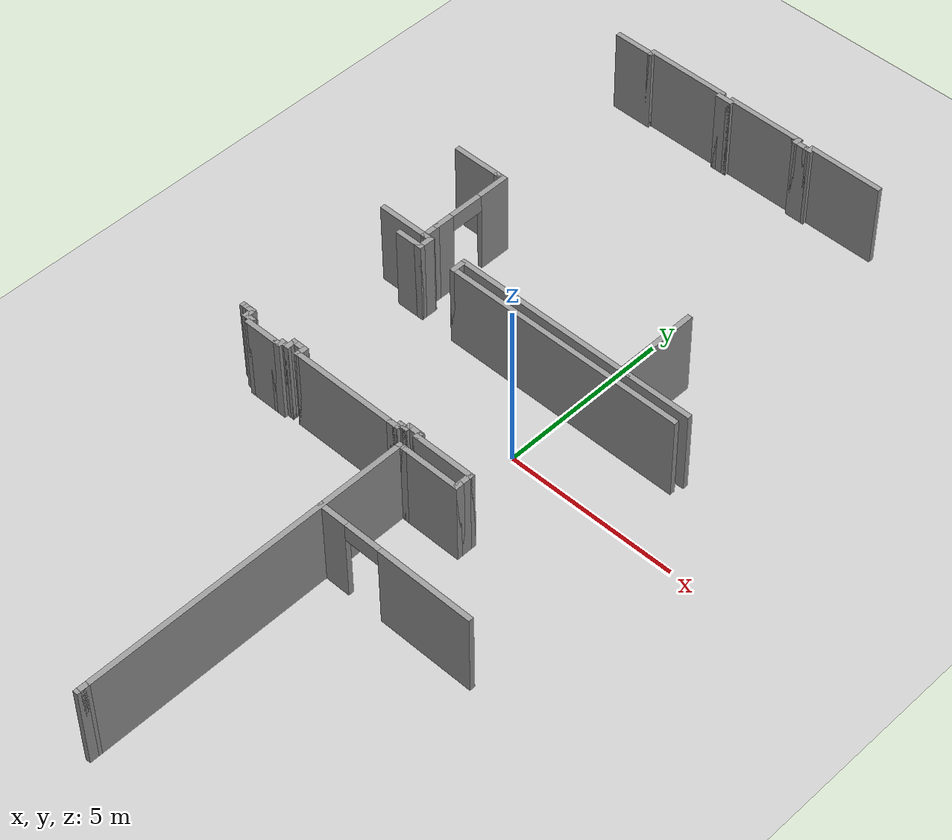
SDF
<sdf version="1.6">
 <world name="default">
  <model name="ground_plane">
   <static>1</static>
   <link name="link">
    <collision name="collision">
     <geometry><plane><normal>0 0 1</normal><size>100 100</size></plane></geometry>
     <surface><friction><ode><mu>100</mu><mu2>50</mu2></ode></friction></surface>
    </collision>
    <visual name="visual">
     <cast_shadows>0</cast_shadows>
     <geometry><plane><normal>0 0 1</normal><size>100 100</size></plane></geometry>
     <material>
      <script><uri>file://media/materials/scripts/gazebo.material</uri><name>Gazebo/Grey</name></script>
     </material>
    </visual>
   </link>
  </model>
  <model name="office_full">
   <pose>-0.417572 -0.704362 0 0 -0 0</pose>
   <link name="Wall_218">
    <collision name="Wall_218_Collision">
     <geometry><box><size>0.25 0.15 2.5</size></box></geometry>
     <pose>0 0 1.25 0 -0 0</pose>
    </collision>
    <visual name="Wall_218_Visual">
     <pose>0 0 1.25 0 -0 0</pose>
     <geometry><box><size>0.25 0.15 2.5</size></box></geometry>
     <material>
      <script><uri>file://media/materials/scripts/gazebo.material</uri><name>Gazebo/Grey</name></script>
      <ambient>1 1 1 1</ambient>
     </material>
    </visual>
    <pose>-6.0403 -1.78121 0 0 -0 0</pose>
   </link>
   <link name="Wall_219">
    <collision name="Wall_219_Collision">
     <geometry><box><size>0.25 0.15 2.5</size></box></geometry>
     <pose>0 0 1.25 0 -0 0</pose>
    </collision>
    <visual name="Wall_219_Visual">
     <pose>0 0 1.25 0 -0 0</pose>
     <geometry><box><size>0.25 0.15 2.5</size></box></geometry>
     <material>
      <script><uri>file://media/materials/scripts/gazebo.material</uri><name>Gazebo/Grey</name></script>
      <ambient>1 1 1 1</ambient>
     </material>
    </visual>
    <pose>-5.9403 -1.78121 0 0 -0 0</pose>
   </link>
   <link name="Wall_220">
    <collision name="Wall_220_Collision">
     <geometry><box><size>0.25 0.15 2.5</size></box></geometry>
     <pose>0 0 1.25 0 -0 0</pose>
    </collision>
    <visual name="Wall_220_Visual">
     <pose>0 0 1.25 0 -0 0</pose>
     <geometry><box><size>0.25 0.15 2.5</size></box></geometry>
     <material>
      <script><uri>file://media/materials/scripts/gazebo.material</uri><name>Gazebo/Grey</name></script>
      <ambient>1 1 1 1</ambient>
     </material>
    </visual>
    <pose>-5.8403 -1.78121 0 0 -0 0</pose>
   </link>
   <link name="Wall_224">
    <collision name="Wall_224_Collision">
     <geometry><box><size>0.25 0.15 2.5</size></box></geometry>
     <pose>0 0 1.25 0 -0 0</pose>
    </collision>
    <visual name="Wall_224_Visual">
     <pose>0 0 1.25 0 -0 0</pose>
     <geometry><box><size>0.25 0.15 2.5</size></box></geometry>
     <material>
      <script><uri>file://media/materials/scripts/gazebo.material</uri><name>Gazebo/Grey</name></script>
      <ambient>1 1 1 1</ambient>
     </material>
    </visual>
    <pose>-5.8403 -1.78121 0 0 -0 0</pose>
   </link>
   <link name="Wall_225">
    <collision name="Wall_225_Collision">
     <geometry><box><size>0.25 0.15 2.5</size></box></geometry>
     <pose>0 0 1.25 0 -0 0</pose>
    </collision>
    <visual name="Wall_225_Visual">
     <pose>0 0 1.25 0 -0 0</pose>
     <geometry><box><size>0.25 0.15 2.5</size></box></geometry>
     <material>
      <script><uri>file://media/materials/scripts/gazebo.material</uri><name>Gazebo/Grey</name></script>
      <ambient>1 1 1 1</ambient>
     </material>
    </visual>
    <pose>-5.7903 -1.83121 0 0 0 -1.5708</pose>
   </link>
   <link name="Wall_226">
    <collision name="Wall_226_Collision">
     <geometry><box><size>0.25 0.15 2.5</size></box></geometry>
     <pose>0 0 1.25 0 -0 0</pose>
    </collision>
    <visual name="Wall_226_Visual">
     <pose>0 0 1.25 0 -0 0</pose>
     <geometry><box><size>0.25 0.15 2.5</size></box></geometry>
     <material>
      <script><uri>file://media/materials/scripts/gazebo.material</uri><name>Gazebo/Grey</name></script>
      <ambient>1 1 1 1</ambient>
     </material>
    </visual>
    <pose>-5.7903 -1.93121 0 0 0 -1.5708</pose>
   </link>
   <link name="Wall_227">
    <collision name="Wall_227_Collision">
     <geometry><box><size>0.25 0.15 2.5</size></box></geometry>
     <pose>0 0 1.25 0 -0 0</pose>
    </collision>
    <visual name="Wall_227_Visual">
     <pose>0 0 1.25 0 -0 0</pose>
     <geometry><box><size>0.25 0.15 2.5</size></box></geometry>
     <material>
      <script><uri>file://media/materials/scripts/gazebo.material</uri><name>Gazebo/Grey</name></script>
      <ambient>1 1 1 1</ambient>
     </material>
    </visual>
    <pose>-5.7403 -1.98121 0 0 -0 0</pose>
   </link>
   <link name="Wall_228">
    <collision name="Wall_228_Collision">
     <geometry><box><size>0.25 0.15 2.5</size></box></geometry>
     <pose>0 0 1.25 0 -0 0</pose>
    </collision>
    <visual name="Wall_228_Visual">
     <pose>0 0 1.25 0 -0 0</pose>
     <geometry><box><size>0.25 0.15 2.5</size></box></geometry>
     <material>
      <script><uri>file://media/materials/scripts/gazebo.material</uri><name>Gazebo/Grey</name></script>
      <ambient>1 1 1 1</ambient>
     </material>
    </visual>
    <pose>-5.6403 -1.98121 0 0 -0 0</pose>
   </link>
   <link name="Wall_229">
    <collision name="Wall_229_Collision">
     <geometry><box><size>0.25 0.15 2.5</size></box></geometry>
     <pose>0 0 1.25 0 -0 0</pose>
    </collision>
    <visual name="Wall_229_Visual">
     <pose>0 0 1.25 0 -0 0</pose>
     <geometry><box><size>0.25 0.15 2.5</size></box></geometry>
     <material>
      <script><uri>file://media/materials/scripts/gazebo.material</uri><name>Gazebo/Grey</name></script>
      <ambient>1 1 1 1</ambient>
     </material>
    </visual>
    <pose>-5.5903 -2.03121 0 0 0 -1.5708</pose>
   </link>
   <link name="Wall_230">
    <collision name="Wall_230_Collision">
     <geometry><box><size>1 0.15 2.5</size></box></geometry>
     <pose>0 0 1.25 0 -0 0</pose>
    </collision>
    <visual name="Wall_230_Visual">
     <pose>0 0 1.25 0 -0 0</pose>
     <geometry><box><size>1 0.15 2.5</size></box></geometry>
     <material>
      <script><uri>file://media/materials/scripts/gazebo.material</uri><name>Gazebo/Grey</name></script>
      <ambient>1 1 1 1</ambient>
     </material>
    </visual>
    <pose>-5.1653 -2.08121 0 0 -0 0</pose>
   </link>
   <link name="Wall_231">
    <collision name="Wall_231_Collision">
     <geometry><box><size>0.25 0.15 2.5</size></box></geometry>
     <pose>0 0 1.25 0 -0 0</pose>
    </collision>
    <visual name="Wall_231_Visual">
     <pose>0 0 1.25 0 -0 0</pose>
     <geometry><box><size>0.25 0.15 2.5</size></box></geometry>
     <material>
      <script><uri>file://media/materials/scripts/gazebo.material</uri><name>Gazebo/Grey</name></script>
      <ambient>1 1 1 1</ambient>
     </material>
    </visual>
    <pose>-4.6903 -2.08121 0 0 -0 0</pose>
   </link>
   <link name="Wall_232">
    <collision name="Wall_232_Collision">
     <geometry><box><size>0.25 0.15 2.5</size></box></geometry>
     <pose>0 0 1.25 0 -0 0</pose>
    </collision>
    <visual name="Wall_232_Visual">
     <pose>0 0 1.25 0 -0 0</pose>
     <geometry><box><size>0.25 0.15 2.5</size></box></geometry>
     <material>
      <script><uri>file://media/materials/scripts/gazebo.material</uri><name>Gazebo/Grey</name></script>
      <ambient>1 1 1 1</ambient>
     </material>
    </visual>
    <pose>-4.5903 -2.08121 0 0 -0 0</pose>
   </link>
   <link name="Wall_233">
    <collision name="Wall_233_Collision">
     <geometry><box><size>0.25 0.15 2.5</size></box></geometry>
     <pose>0 0 1.25 0 -0 0</pose>
    </collision>
    <visual name="Wall_233_Visual">
     <pose>0 0 1.25 0 -0 0</pose>
     <geometry><box><size>0.25 0.15 2.5</size></box></geometry>
     <material>
      <script><uri>file://media/materials/scripts/gazebo.material</uri><name>Gazebo/Grey</name></script>
      <ambient>1 1 1 1</ambient>
     </material>
    </visual>
    <pose>-4.5403 -2.03121 0 0 -0 1.5708</pose>
   </link>
   <link name="Wall_234">
    <collision name="Wall_234_Collision">
     <geometry><box><size>0.25 0.15 2.5</size></box></geometry>
     <pose>0 0 1.25 0 -0 0</pose>
    </collision>
    <visual name="Wall_234_Visual">
     <pose>0 0 1.25 0 -0 0</pose>
     <geometry><box><size>0.25 0.15 2.5</size></box></geometry>
     <material>
      <script><uri>file://media/materials/scripts/gazebo.material</uri><name>Gazebo/Grey</name></script>
      <ambient>1 1 1 1</ambient>
     </material>
    </visual>
    <pose>-4.4903 -1.98121 0 0 -0 0</pose>
   </link>
   <link name="Wall_235">
    <collision name="Wall_235_Collision">
     <geometry><box><size>0.25 0.15 2.5</size></box></geometry>
     <pose>0 0 1.25 0 -0 0</pose>
    </collision>
    <visual name="Wall_235_Visual">
     <pose>0 0 1.25 0 -0 0</pose>
     <geometry><box><size>0.25 0.15 2.5</size></box></geometry>
     <material>
      <script><uri>file://media/materials/scripts/gazebo.material</uri><name>Gazebo/Grey</name></script>
      <ambient>1 1 1 1</ambient>
     </material>
    </visual>
    <pose>-4.3903 -1.98121 0 0 -0 0</pose>
   </link>
   <link name="Wall_236">
    <collision name="Wall_236_Collision">
     <geometry><box><size>0.25 0.15 2.5</size></box></geometry>
     <pose>0 0 1.25 0 -0 0</pose>
    </collision>
    <visual name="Wall_236_Visual">
     <pose>0 0 1.25 0 -0 0</pose>
     <geometry><box><size>0.25 0.15 2.5</size></box></geometry>
     <material>
      <script><uri>file://media/materials/scripts/gazebo.material</uri><name>Gazebo/Grey</name></script>
      <ambient>1 1 1 1</ambient>
     </material>
    </visual>
    <pose>-4.3403 -1.93121 0 0 -0 1.5708</pose>
   </link>
   <link name="Wall_237">
    <collision name="Wall_237_Collision">
     <geometry><box><size>0.25 0.15 2.5</size></box></geometry>
     <pose>0 0 1.25 0 -0 0</pose>
    </collision>
    <visual name="Wall_237_Visual">
     <pose>0 0 1.25 0 -0 0</pose>
     <geometry><box><size>0.25 0.15 2.5</size></box></geometry>
     <material>
      <script><uri>file://media/materials/scripts/gazebo.material</uri><name>Gazebo/Grey</name></script>
      <ambient>1 1 1 1</ambient>
     </material>
    </visual>
    <pose>-4.3403 -1.83121 0 0 -0 1.5708</pose>
   </link>
   <link name="Wall_238">
    <collision name="Wall_238_Collision">
     <geometry><box><size>0.5 0.15 2.5</size></box></geometry>
     <pose>0 0 1.25 0 -0 0</pose>
    </collision>
    <visual name="Wall_238_Visual">
     <pose>0 0 1.25 0 -0 0</pose>
     <geometry><box><size>0.5 0.15 2.5</size></box></geometry>
     <material>
      <script><uri>file://media/materials/scripts/gazebo.material</uri><name>Gazebo/Grey</name></script>
      <ambient>1 1 1 1</ambient>
     </material>
    </visual>
    <pose>-4.1653 -1.78121 0 0 -0 0</pose>
   </link>
   <link name="Wall_239">
    <collision name="Wall_239_Collision">
     <geometry><box><size>0.25 0.15 2.5</size></box></geometry>
     <pose>0 0 1.25 0 -0 0</pose>
    </collision>
    <visual name="Wall_239_Visual">
     <pose>0 0 1.25 0 -0 0</pose>
     <geometry><box><size>0.25 0.15 2.5</size></box></geometry>
     <material>
      <script><uri>file://media/materials/scripts/gazebo.material</uri><name>Gazebo/Grey</name></script>
      <ambient>1 1 1 1</ambient>
     </material>
    </visual>
    <pose>-3.9903 -1.83121 0 0 0 -1.5708</pose>
   </link>
   <link name="Wall_240">
    <collision name="Wall_240_Collision">
     <geometry><box><size>0.25 0.15 2.5</size></box></geometry>
     <pose>0 0 1.25 0 -0 0</pose>
    </collision>
    <visual name="Wall_240_Visual">
     <pose>0 0 1.25 0 -0 0</pose>
     <geometry><box><size>0.25 0.15 2.5</size></box></geometry>
     <material>
      <script><uri>file://media/materials/scripts/gazebo.material</uri><name>Gazebo/Grey</name></script>
      <ambient>1 1 1 1</ambient>
     </material>
    </visual>
    <pose>-3.9903 -1.93121 0 0 0 -1.5708</pose>
   </link>
   <link name="Wall_241">
    <collision name="Wall_241_Collision">
     <geometry><box><size>3.25 0.15 2.5</size></box></geometry>
     <pose>0 0 1.25 0 -0 0</pose>
    </collision>
    <visual name="Wall_241_Visual">
     <pose>0 0 1.25 0 -0 0</pose>
     <geometry><box><size>3.25 0.15 2.5</size></box></geometry>
     <material>
      <script><uri>file://media/materials/scripts/gazebo.material</uri><name>Gazebo/Grey</name></script>
      <ambient>1 1 1 1</ambient>
     </material>
    </visual>
    <pose>-2.4403 -1.98121 0 0 -0 0</pose>
   </link>
   <link name="Wall_242">
    <collision name="Wall_242_Collision">
     <geometry><box><size>0.25 0.15 2.5</size></box></geometry>
     <pose>0 0 1.25 0 -0 0</pose>
    </collision>
    <visual name="Wall_242_Visual">
     <pose>0 0 1.25 0 -0 0</pose>
     <geometry><box><size>0.25 0.15 2.5</size></box></geometry>
     <material>
      <script><uri>file://media/materials/scripts/gazebo.material</uri><name>Gazebo/Grey</name></script>
      <ambient>1 1 1 1</ambient>
     </material>
    </visual>
    <pose>-0.8403 -1.98121 0 0 -0 0</pose>
   </link>
   <link name="Wall_243">
    <collision name="Wall_243_Collision">
     <geometry><box><size>0.25 0.15 2.5</size></box></geometry>
     <pose>0 0 1.25 0 -0 0</pose>
    </collision>
    <visual name="Wall_243_Visual">
     <pose>0 0 1.25 0 -0 0</pose>
     <geometry><box><size>0.25 0.15 2.5</size></box></geometry>
     <material>
      <script><uri>file://media/materials/scripts/gazebo.material</uri><name>Gazebo/Grey</name></script>
      <ambient>1 1 1 1</ambient>
     </material>
    </visual>
    <pose>-0.740299 -1.98121 0 0 -0 0</pose>
   </link>
   <link name="Wall_244">
    <collision name="Wall_244_Collision">
     <geometry><box><size>0.25 0.15 2.5</size></box></geometry>
     <pose>0 0 1.25 0 -0 0</pose>
    </collision>
    <visual name="Wall_244_Visual">
     <pose>0 0 1.25 0 -0 0</pose>
     <geometry><box><size>0.25 0.15 2.5</size></box></geometry>
     <material>
      <script><uri>file://media/materials/scripts/gazebo.material</uri><name>Gazebo/Grey</name></script>
      <ambient>1 1 1 1</ambient>
     </material>
    </visual>
    <pose>-0.6903 -1.93121 0 0 -0 1.5708</pose>
   </link>
   <link name="Wall_245">
    <collision name="Wall_245_Collision">
     <geometry><box><size>0.25 0.15 2.5</size></box></geometry>
     <pose>0 0 1.25 0 -0 0</pose>
    </collision>
    <visual name="Wall_245_Visual">
     <pose>0 0 1.25 0 -0 0</pose>
     <geometry><box><size>0.25 0.15 2.5</size></box></geometry>
     <material>
      <script><uri>file://media/materials/scripts/gazebo.material</uri><name>Gazebo/Grey</name></script>
      <ambient>1 1 1 1</ambient>
     </material>
    </visual>
    <pose>-0.640299 -1.88121 0 0 -0 0</pose>
   </link>
   <link name="Wall_246">
    <collision name="Wall_246_Collision">
     <geometry><box><size>0.25 0.15 2.5</size></box></geometry>
     <pose>0 0 1.25 0 -0 0</pose>
    </collision>
    <visual name="Wall_246_Visual">
     <pose>0 0 1.25 0 -0 0</pose>
     <geometry><box><size>0.25 0.15 2.5</size></box></geometry>
     <material>
      <script><uri>file://media/materials/scripts/gazebo.material</uri><name>Gazebo/Grey</name></script>
      <ambient>1 1 1 1</ambient>
     </material>
    </visual>
    <pose>-0.540299 -1.88121 0 0 -0 0</pose>
   </link>
   <link name="Wall_247">
    <collision name="Wall_247_Collision">
     <geometry><box><size>0.25 0.15 2.5</size></box></geometry>
     <pose>0 0 1.25 0 -0 0</pose>
    </collision>
    <visual name="Wall_247_Visual">
     <pose>0 0 1.25 0 -0 0</pose>
     <geometry><box><size>0.25 0.15 2.5</size></box></geometry>
     <material>
      <script><uri>file://media/materials/scripts/gazebo.material</uri><name>Gazebo/Grey</name></script>
      <ambient>1 1 1 1</ambient>
     </material>
    </visual>
    <pose>-0.490299 -1.83121 0 0 -0 1.5708</pose>
   </link>
   <link name="Wall_248">
    <collision name="Wall_248_Collision">
     <geometry><box><size>0.5 0.15 2.5</size></box></geometry>
     <pose>0 0 1.25 0 -0 0</pose>
    </collision>
    <visual name="Wall_248_Visual">
     <pose>0 0 1.25 0 -0 0</pose>
     <geometry><box><size>0.5 0.15 2.5</size></box></geometry>
     <material>
      <script><uri>file://media/materials/scripts/gazebo.material</uri><name>Gazebo/Grey</name></script>
      <ambient>1 1 1 1</ambient>
     </material>
    </visual>
    <pose>-0.3153 -1.78121 0 0 -0 0</pose>
   </link>
   <link name="Wall_249">
    <collision name="Wall_249_Collision">
     <geometry><box><size>0.25 0.15 2.5</size></box></geometry>
     <pose>0 0 1.25 0 -0 0</pose>
    </collision>
    <visual name="Wall_249_Visual">
     <pose>0 0 1.25 0 -0 0</pose>
     <geometry><box><size>0.25 0.15 2.5</size></box></geometry>
     <material>
      <script><uri>file://media/materials/scripts/gazebo.material</uri><name>Gazebo/Grey</name></script>
      <ambient>1 1 1 1</ambient>
     </material>
    </visual>
    <pose>-0.140299 -1.83121 0 0 0 -1.5708</pose>
   </link>
   <link name="Wall_250">
    <collision name="Wall_250_Collision">
     <geometry><box><size>1.75 0.15 2.5</size></box></geometry>
     <pose>0 0 1.25 0 -0 0</pose>
    </collision>
    <visual name="Wall_250_Visual">
     <pose>0 0 1.25 0 -0 0</pose>
     <geometry><box><size>1.75 0.15 2.5</size></box></geometry>
     <material>
      <script><uri>file://media/materials/scripts/gazebo.material</uri><name>Gazebo/Grey</name></script>
      <ambient>1 1 1 1</ambient>
     </material>
    </visual>
    <pose>0.659701 -1.88121 0 0 -0 0</pose>
   </link>
   <link name="Wall_251">
    <collision name="Wall_251_Collision">
     <geometry><box><size>0.25 0.15 2.5</size></box></geometry>
     <pose>0 0 1.25 0 -0 0</pose>
    </collision>
    <visual name="Wall_251_Visual">
     <pose>0 0 1.25 0 -0 0</pose>
     <geometry><box><size>0.25 0.15 2.5</size></box></geometry>
     <material>
      <script><uri>file://media/materials/scripts/gazebo.material</uri><name>Gazebo/Grey</name></script>
      <ambient>1 1 1 1</ambient>
     </material>
    </visual>
    <pose>1.5097 -1.88121 0 0 -0 0</pose>
   </link>
   <link name="Wall_252">
    <collision name="Wall_252_Collision">
     <geometry><box><size>0.5 0.15 2.5</size></box></geometry>
     <pose>0 0 1.25 0 -0 0</pose>
    </collision>
    <visual name="Wall_252_Visual">
     <pose>0 0 1.25 0 -0 0</pose>
     <geometry><box><size>0.5 0.15 2.5</size></box></geometry>
     <material>
      <script><uri>file://media/materials/scripts/gazebo.material</uri><name>Gazebo/Grey</name></script>
      <ambient>1 1 1 1</ambient>
     </material>
    </visual>
    <pose>1.5597 -2.05621 0 0 0 -1.5708</pose>
   </link>
   <link name="Wall_253">
    <collision name="Wall_253_Collision">
     <geometry><box><size>0.25 0.15 2.5</size></box></geometry>
     <pose>0 0 1.25 0 -0 0</pose>
    </collision>
    <visual name="Wall_253_Visual">
     <pose>0 0 1.25 0 -0 0</pose>
     <geometry><box><size>0.25 0.15 2.5</size></box></geometry>
     <material>
      <script><uri>file://media/materials/scripts/gazebo.material</uri><name>Gazebo/Grey</name></script>
      <ambient>1 1 1 1</ambient>
     </material>
    </visual>
    <pose>1.5597 -2.28121 0 0 0 -1.5708</pose>
   </link>
   <link name="Wall_254">
    <collision name="Wall_254_Collision">
     <geometry><box><size>1.75 0.15 2.5</size></box></geometry>
     <pose>0 0 1.25 0 -0 0</pose>
    </collision>
    <visual name="Wall_254_Visual">
     <pose>0 0 1.25 0 -0 0</pose>
     <geometry><box><size>1.75 0.15 2.5</size></box></geometry>
     <material>
      <script><uri>file://media/materials/scripts/gazebo.material</uri><name>Gazebo/Grey</name></script>
      <ambient>1 1 1 1</ambient>
     </material>
    </visual>
    <pose>0.7597 -2.33121 0 0 -0 3.14159</pose>
   </link>
   <link name="Wall_255">
    <collision name="Wall_255_Collision">
     <geometry><box><size>0.25 0.15 2.5</size></box></geometry>
     <pose>0 0 1.25 0 -0 0</pose>
    </collision>
    <visual name="Wall_255_Visual">
     <pose>0 0 1.25 0 -0 0</pose>
     <geometry><box><size>0.25 0.15 2.5</size></box></geometry>
     <material>
      <script><uri>file://media/materials/scripts/gazebo.material</uri><name>Gazebo/Grey</name></script>
      <ambient>1 1 1 1</ambient>
     </material>
    </visual>
    <pose>-0.0903 -2.33121 0 0 -0 3.14159</pose>
   </link>
   <link name="Wall_256">
    <collision name="Wall_256_Collision">
     <geometry><box><size>0.25 0.15 2.5</size></box></geometry>
     <pose>0 0 1.25 0 -0 0</pose>
    </collision>
    <visual name="Wall_256_Visual">
     <pose>0 0 1.25 0 -0 0</pose>
     <geometry><box><size>0.25 0.15 2.5</size></box></geometry>
     <material>
      <script><uri>file://media/materials/scripts/gazebo.material</uri><name>Gazebo/Grey</name></script>
      <ambient>1 1 1 1</ambient>
     </material>
    </visual>
    <pose>-0.1903 -2.33121 0 0 -0 3.14159</pose>
   </link>
   <link name="Wall_257">
    <collision name="Wall_257_Collision">
     <geometry><box><size>9.5 0.15 2.5</size></box></geometry>
     <pose>0 0 1.25 0 -0 0</pose>
    </collision>
    <visual name="Wall_257_Visual">
     <pose>0 0 1.25 0 -0 0</pose>
     <geometry><box><size>9.5 0.15 2.5</size></box></geometry>
     <material>
      <script><uri>file://media/materials/scripts/gazebo.material</uri><name>Gazebo/Grey</name></script>
      <ambient>1 1 1 1</ambient>
     </material>
    </visual>
    <pose>-0.240299 -7.00621 0 0 0 -1.5708</pose>
   </link>
   <link name="Wall_258">
    <collision name="Wall_258_Collision">
     <geometry><box><size>0.25 0.15 2.5</size></box></geometry>
     <pose>0 0 1.25 0 -0 0</pose>
    </collision>
    <visual name="Wall_258_Visual">
     <pose>0 0 1.25 0 -0 0</pose>
     <geometry><box><size>0.25 0.15 2.5</size></box></geometry>
     <material>
      <script><uri>file://media/materials/scripts/gazebo.material</uri><name>Gazebo/Grey</name></script>
      <ambient>1 1 1 1</ambient>
     </material>
    </visual>
    <pose>-0.240299 -11.7312 0 0 0 -1.5708</pose>
   </link>
   <link name="Wall_259">
    <collision name="Wall_259_Collision">
     <geometry><box><size>0.25 0.15 2.5</size></box></geometry>
     <pose>0 0 1.25 0 -0 0</pose>
    </collision>
    <visual name="Wall_259_Visual">
     <pose>0 0 1.25 0 -0 0</pose>
     <geometry><box><size>0.25 0.15 2.5</size></box></geometry>
     <material>
      <script><uri>file://media/materials/scripts/gazebo.material</uri><name>Gazebo/Grey</name></script>
      <ambient>1 1 1 1</ambient>
     </material>
    </visual>
    <pose>-0.240299 -11.8312 0 0 0 -1.5708</pose>
   </link>
   <link name="Wall_278">
    <pose>2.0603 -4.79261 0 0 -0 0</pose>
    <visual name="Wall_278_Visual_0">
     <pose>-1.93341 0 1.25 0 -0 0</pose>
     <geometry><box><size>0.883173 0.15 2.5</size></box></geometry>
     <material>
      <script><uri>file://media/materials/scripts/gazebo.material</uri><name>Gazebo/Grey</name></script>
      <ambient>1 1 1 1</ambient>
     </material>
    </visual>
    <collision name="Wall_278_Collision_0">
     <geometry><box><size>0.883173 0.15 2.5</size></box></geometry>
     <pose>-1.93341 0 1.25 0 -0 0</pose>
    </collision>
    <visual name="Wall_278_Visual_1">
     <pose>0.966586 0 1.25 0 -0 0</pose>
     <geometry><box><size>2.81683 0.15 2.5</size></box></geometry>
     <material>
      <script><uri>file://media/materials/scripts/gazebo.material</uri><name>Gazebo/Grey</name></script>
      <ambient>1 1 1 1</ambient>
     </material>
    </visual>
    <collision name="Wall_278_Collision_1">
     <geometry><box><size>2.81683 0.15 2.5</size></box></geometry>
     <pose>0.966586 0 1.25 0 -0 0</pose>
    </collision>
    <visual name="Wall_278_Visual_2">
     <pose>-0.966827 0 2.25 0 -0 0</pose>
     <geometry><box><size>1.05 0.15 0.5</size></box></geometry>
     <material>
      <script><uri>file://media/materials/scripts/gazebo.material</uri><name>Gazebo/Grey</name></script>
      <ambient>1 1 1 1</ambient>
     </material>
    </visual>
    <collision name="Wall_278_Collision_2">
     <geometry><box><size>1.05 0.15 0.5</size></box></geometry>
     <pose>-0.966827 0 2.25 0 -0 0</pose>
    </collision>
   </link>
   <link name="Wall_316">
    <collision name="Wall_316_Collision">
     <geometry><box><size>1.25 0.15 2.5</size></box></geometry>
     <pose>0 0 1.25 0 -0 0</pose>
    </collision>
    <visual name="Wall_316_Visual">
     <pose>0 0 1.25 0 -0 0</pose>
     <geometry><box><size>1.25 0.15 2.5</size></box></geometry>
     <material>
      <script><uri>file://media/materials/scripts/gazebo.material</uri><name>Gazebo/Grey</name></script>
      <ambient>1 1 1 1</ambient>
     </material>
    </visual>
    <pose>-5.69202 11.7397 0 0 -0 0</pose>
   </link>
   <link name="Wall_317">
    <collision name="Wall_317_Collision">
     <geometry><box><size>0.25 0.15 2.5</size></box></geometry>
     <pose>0 0 1.25 0 -0 0</pose>
    </collision>
    <visual name="Wall_317_Visual">
     <pose>0 0 1.25 0 -0 0</pose>
     <geometry><box><size>0.25 0.15 2.5</size></box></geometry>
     <material>
      <script><uri>file://media/materials/scripts/gazebo.material</uri><name>Gazebo/Grey</name></script>
      <ambient>1 1 1 1</ambient>
     </material>
    </visual>
    <pose>-5.14202 11.7897 0 0 -0 1.5708</pose>
   </link>
   <link name="Wall_318">
    <collision name="Wall_318_Collision">
     <geometry><box><size>2.5 0.15 2.5</size></box></geometry>
     <pose>0 0 1.25 0 -0 0</pose>
    </collision>
    <visual name="Wall_318_Visual">
     <pose>0 0 1.25 0 -0 0</pose>
     <geometry><box><size>2.5 0.15 2.5</size></box></geometry>
     <material>
      <script><uri>file://media/materials/scripts/gazebo.material</uri><name>Gazebo/Grey</name></script>
      <ambient>1 1 1 1</ambient>
     </material>
    </visual>
    <pose>-3.96702 11.8397 0 0 -0 0</pose>
   </link>
   <link name="Wall_319">
    <collision name="Wall_319_Collision">
     <geometry><box><size>0.25 0.15 2.5</size></box></geometry>
     <pose>0 0 1.25 0 -0 0</pose>
    </collision>
    <visual name="Wall_319_Visual">
     <pose>0 0 1.25 0 -0 0</pose>
     <geometry><box><size>0.25 0.15 2.5</size></box></geometry>
     <material>
      <script><uri>file://media/materials/scripts/gazebo.material</uri><name>Gazebo/Grey</name></script>
      <ambient>1 1 1 1</ambient>
     </material>
    </visual>
    <pose>-2.79202 11.7897 0 0 0 -1.5708</pose>
   </link>
   <link name="Wall_320">
    <collision name="Wall_320_Collision">
     <geometry><box><size>0.5 0.15 2.5</size></box></geometry>
     <pose>0 0 1.25 0 -0 0</pose>
    </collision>
    <visual name="Wall_320_Visual">
     <pose>0 0 1.25 0 -0 0</pose>
     <geometry><box><size>0.5 0.15 2.5</size></box></geometry>
     <material>
      <script><uri>file://media/materials/scripts/gazebo.material</uri><name>Gazebo/Grey</name></script>
      <ambient>1 1 1 1</ambient>
     </material>
    </visual>
    <pose>-2.61702 11.7397 0 0 -0 0</pose>
   </link>
   <link name="Wall_321">
    <collision name="Wall_321_Collision">
     <geometry><box><size>0.25 0.15 2.5</size></box></geometry>
     <pose>0 0 1.25 0 -0 0</pose>
    </collision>
    <visual name="Wall_321_Visual">
     <pose>0 0 1.25 0 -0 0</pose>
     <geometry><box><size>0.25 0.15 2.5</size></box></geometry>
     <material>
      <script><uri>file://media/materials/scripts/gazebo.material</uri><name>Gazebo/Grey</name></script>
      <ambient>1 1 1 1</ambient>
     </material>
    </visual>
    <pose>-2.44202 11.7897 0 0 -0 1.5708</pose>
   </link>
   <link name="Wall_322">
    <collision name="Wall_322_Collision">
     <geometry><box><size>2.25 0.15 2.5</size></box></geometry>
     <pose>0 0 1.25 0 -0 0</pose>
    </collision>
    <visual name="Wall_322_Visual">
     <pose>0 0 1.25 0 -0 0</pose>
     <geometry><box><size>2.25 0.15 2.5</size></box></geometry>
     <material>
      <script><uri>file://media/materials/scripts/gazebo.material</uri><name>Gazebo/Grey</name></script>
      <ambient>1 1 1 1</ambient>
     </material>
    </visual>
    <pose>-1.39202 11.8397 0 0 -0 0</pose>
   </link>
   <link name="Wall_323">
    <collision name="Wall_323_Collision">
     <geometry><box><size>0.25 0.15 2.5</size></box></geometry>
     <pose>0 0 1.25 0 -0 0</pose>
    </collision>
    <visual name="Wall_323_Visual">
     <pose>0 0 1.25 0 -0 0</pose>
     <geometry><box><size>0.25 0.15 2.5</size></box></geometry>
     <material>
      <script><uri>file://media/materials/scripts/gazebo.material</uri><name>Gazebo/Grey</name></script>
      <ambient>1 1 1 1</ambient>
     </material>
    </visual>
    <pose>-0.29202 11.8397 0 0 -0 0</pose>
   </link>
   <link name="Wall_324">
    <collision name="Wall_324_Collision">
     <geometry><box><size>0.25 0.15 2.5</size></box></geometry>
     <pose>0 0 1.25 0 -0 0</pose>
    </collision>
    <visual name="Wall_324_Visual">
     <pose>0 0 1.25 0 -0 0</pose>
     <geometry><box><size>0.25 0.15 2.5</size></box></geometry>
     <material>
      <script><uri>file://media/materials/scripts/gazebo.material</uri><name>Gazebo/Grey</name></script>
      <ambient>1 1 1 1</ambient>
     </material>
    </visual>
    <pose>-0.24202 11.7897 0 0 0 -1.5708</pose>
   </link>
   <link name="Wall_325">
    <collision name="Wall_325_Collision">
     <geometry><box><size>0.5 0.15 2.5</size></box></geometry>
     <pose>0 0 1.25 0 -0 0</pose>
    </collision>
    <visual name="Wall_325_Visual">
     <pose>0 0 1.25 0 -0 0</pose>
     <geometry><box><size>0.5 0.15 2.5</size></box></geometry>
     <material>
      <script><uri>file://media/materials/scripts/gazebo.material</uri><name>Gazebo/Grey</name></script>
      <ambient>1 1 1 1</ambient>
     </material>
    </visual>
    <pose>-0.06702 11.7397 0 0 -0 0</pose>
   </link>
   <link name="Wall_326">
    <collision name="Wall_326_Collision">
     <geometry><box><size>0.25 0.15 2.5</size></box></geometry>
     <pose>0 0 1.25 0 -0 0</pose>
    </collision>
    <visual name="Wall_326_Visual">
     <pose>0 0 1.25 0 -0 0</pose>
     <geometry><box><size>0.25 0.15 2.5</size></box></geometry>
     <material>
      <script><uri>file://media/materials/scripts/gazebo.material</uri><name>Gazebo/Grey</name></script>
      <ambient>1 1 1 1</ambient>
     </material>
    </visual>
    <pose>0.157979 11.7397 0 0 -0 0</pose>
   </link>
   <link name="Wall_327">
    <collision name="Wall_327_Collision">
     <geometry><box><size>0.25 0.15 2.5</size></box></geometry>
     <pose>0 0 1.25 0 -0 0</pose>
    </collision>
    <visual name="Wall_327_Visual">
     <pose>0 0 1.25 0 -0 0</pose>
     <geometry><box><size>0.25 0.15 2.5</size></box></geometry>
     <material>
      <script><uri>file://media/materials/scripts/gazebo.material</uri><name>Gazebo/Grey</name></script>
      <ambient>1 1 1 1</ambient>
     </material>
    </visual>
    <pose>0.20798 11.7897 0 0 -0 1.5708</pose>
   </link>
   <link name="Wall_328">
    <collision name="Wall_328_Collision">
     <geometry><box><size>2.25 0.15 2.5</size></box></geometry>
     <pose>0 0 1.25 0 -0 0</pose>
    </collision>
    <visual name="Wall_328_Visual">
     <pose>0 0 1.25 0 -0 0</pose>
     <geometry><box><size>2.25 0.15 2.5</size></box></geometry>
     <material>
      <script><uri>file://media/materials/scripts/gazebo.material</uri><name>Gazebo/Grey</name></script>
      <ambient>1 1 1 1</ambient>
     </material>
    </visual>
    <pose>1.25798 11.8397 0 0 -0 0</pose>
   </link>
   <link name="Wall_359">
    <collision name="Wall_359_Collision">
     <geometry><box><size>0.75 0.15 2.5</size></box></geometry>
     <pose>0 0 1.25 0 -0 0</pose>
    </collision>
    <visual name="Wall_359_Visual">
     <pose>0 0 1.25 0 -0 0</pose>
     <geometry><box><size>0.75 0.15 2.5</size></box></geometry>
     <material>
      <script><uri>file://media/materials/scripts/gazebo.material</uri><name>Gazebo/Grey</name></script>
      <ambient>1 1 1 1</ambient>
     </material>
    </visual>
    <pose>-4.85432 2.53121 0 0 -0 0</pose>
   </link>
   <link name="Wall_360">
    <collision name="Wall_360_Collision">
     <geometry><box><size>0.25 0.15 2.5</size></box></geometry>
     <pose>0 0 1.25 0 -0 0</pose>
    </collision>
    <visual name="Wall_360_Visual">
     <pose>0 0 1.25 0 -0 0</pose>
     <geometry><box><size>0.25 0.15 2.5</size></box></geometry>
     <material>
      <script><uri>file://media/materials/scripts/gazebo.material</uri><name>Gazebo/Grey</name></script>
      <ambient>1 1 1 1</ambient>
     </material>
    </visual>
    <pose>-4.50432 2.53121 0 0 -0 0</pose>
   </link>
   <link name="Wall_362">
    <collision name="Wall_362_Collision">
     <geometry><box><size>0.25 0.15 2.5</size></box></geometry>
     <pose>0 0 1.25 0 -0 0</pose>
    </collision>
    <visual name="Wall_362_Visual">
     <pose>0 0 1.25 0 -0 0</pose>
     <geometry><box><size>0.25 0.15 2.5</size></box></geometry>
     <material>
      <script><uri>file://media/materials/scripts/gazebo.material</uri><name>Gazebo/Grey</name></script>
      <ambient>1 1 1 1</ambient>
     </material>
    </visual>
    <pose>-4.50432 2.53121 0 0 -0 0</pose>
   </link>
   <link name="Wall_363">
    <collision name="Wall_363_Collision">
     <geometry><box><size>0.5 0.15 2.5</size></box></geometry>
     <pose>0 0 1.25 0 -0 0</pose>
    </collision>
    <visual name="Wall_363_Visual">
     <pose>0 0 1.25 0 -0 0</pose>
     <geometry><box><size>0.5 0.15 2.5</size></box></geometry>
     <material>
      <script><uri>file://media/materials/scripts/gazebo.material</uri><name>Gazebo/Grey</name></script>
      <ambient>1 1 1 1</ambient>
     </material>
    </visual>
    <pose>-4.45432 2.70621 0 0 -0 1.5708</pose>
   </link>
   <link name="Wall_364">
    <collision name="Wall_364_Collision">
     <geometry><box><size>1.75 0.15 2.5</size></box></geometry>
     <pose>0 0 1.25 0 -0 0</pose>
    </collision>
    <visual name="Wall_364_Visual">
     <pose>0 0 1.25 0 -0 0</pose>
     <geometry><box><size>1.75 0.15 2.5</size></box></geometry>
     <material>
      <script><uri>file://media/materials/scripts/gazebo.material</uri><name>Gazebo/Grey</name></script>
      <ambient>1 1 1 1</ambient>
     </material>
    </visual>
    <pose>-5.25432 2.88121 0 0 -0 3.14159</pose>
   </link>
   <link name="Wall_369">
    <collision name="Wall_369_Collision">
     <geometry><box><size>1.5 0.15 2.5</size></box></geometry>
     <pose>0 0 1.25 0 -0 0</pose>
    </collision>
    <visual name="Wall_369_Visual">
     <pose>0 0 1.25 0 -0 0</pose>
     <geometry><box><size>1.5 0.15 2.5</size></box></geometry>
     <material>
      <script><uri>file://media/materials/scripts/gazebo.material</uri><name>Gazebo/Grey</name></script>
      <ambient>1 1 1 1</ambient>
     </material>
    </visual>
    <pose>-5.53646 5.66764 0 0 -0 0</pose>
   </link>
   <link name="Wall_370">
    <collision name="Wall_370_Collision">
     <geometry><box><size>0.25 0.15 2.5</size></box></geometry>
     <pose>0 0 1.25 0 -0 0</pose>
    </collision>
    <visual name="Wall_370_Visual">
     <pose>0 0 1.25 0 -0 0</pose>
     <geometry><box><size>0.25 0.15 2.5</size></box></geometry>
     <material>
      <script><uri>file://media/materials/scripts/gazebo.material</uri><name>Gazebo/Grey</name></script>
      <ambient>1 1 1 1</ambient>
     </material>
    </visual>
    <pose>-4.81146 5.66764 0 0 -0 0</pose>
   </link>
   <link name="Wall_371">
    <collision name="Wall_371_Collision">
     <geometry><box><size>0.25 0.15 2.5</size></box></geometry>
     <pose>0 0 1.25 0 -0 0</pose>
    </collision>
    <visual name="Wall_371_Visual">
     <pose>0 0 1.25 0 -0 0</pose>
     <geometry><box><size>0.25 0.15 2.5</size></box></geometry>
     <material>
      <script><uri>file://media/materials/scripts/gazebo.material</uri><name>Gazebo/Grey</name></script>
      <ambient>1 1 1 1</ambient>
     </material>
    </visual>
    <pose>-4.71146 5.66764 0 0 -0 0</pose>
   </link>
   <link name="Wall_372">
    <pose>-4.66146 4.49264 0 0 0 -1.5708</pose>
    <visual name="Wall_372_Visual_0">
     <pose>-0.778286 0 1.25 0 -0 0</pose>
     <geometry><box><size>0.943429 0.15 2.5</size></box></geometry>
     <material>
      <script><uri>file://media/materials/scripts/gazebo.material</uri><name>Gazebo/Grey</name></script>
      <ambient>1 1 1 1</ambient>
     </material>
    </visual>
    <collision name="Wall_372_Collision_0">
     <geometry><box><size>0.943429 0.15 2.5</size></box></geometry>
     <pose>-0.778286 0 1.25 0 -0 0</pose>
    </collision>
    <visual name="Wall_372_Visual_1">
     <pose>0.961714 0 1.25 0 -0 0</pose>
     <geometry><box><size>0.576571 0.15 2.5</size></box></geometry>
     <material>
      <script><uri>file://media/materials/scripts/gazebo.material</uri><name>Gazebo/Grey</name></script>
      <ambient>1 1 1 1</ambient>
     </material>
    </visual>
    <collision name="Wall_372_Collision_1">
     <geometry><box><size>0.576571 0.15 2.5</size></box></geometry>
     <pose>0.961714 0 1.25 0 -0 0</pose>
    </collision>
    <visual name="Wall_372_Visual_2">
     <pose>0.183429 0 2.25 0 -0 0</pose>
     <geometry><box><size>0.98 0.15 0.5</size></box></geometry>
     <material>
      <script><uri>file://media/materials/scripts/gazebo.material</uri><name>Gazebo/Grey</name></script>
      <ambient>1 1 1 1</ambient>
     </material>
    </visual>
    <collision name="Wall_372_Collision_2">
     <geometry><box><size>0.98 0.15 0.5</size></box></geometry>
     <pose>0.183429 0 2.25 0 -0 0</pose>
    </collision>
   </link>
   <link name="Wall_374">
    <collision name="Wall_374_Collision">
     <geometry><box><size>0.25 0.15 2.5</size></box></geometry>
     <pose>0 0 1.25 0 -0 0</pose>
    </collision>
    <visual name="Wall_374_Visual">
     <pose>0 0 1.25 0 -0 0</pose>
     <geometry><box><size>0.25 0.15 2.5</size></box></geometry>
     <material>
      <script><uri>file://media/materials/scripts/gazebo.material</uri><name>Gazebo/Grey</name></script>
      <ambient>1 1 1 1</ambient>
     </material>
    </visual>
    <pose>-4.50432 2.88121 0 0 -0 3.14159</pose>
   </link>
   <link name="Wall_375">
    <collision name="Wall_375_Collision">
     <geometry><box><size>0.25 0.15 2.5</size></box></geometry>
     <pose>0 0 1.25 0 -0 0</pose>
    </collision>
    <visual name="Wall_375_Visual">
     <pose>0 0 1.25 0 -0 0</pose>
     <geometry><box><size>0.25 0.15 2.5</size></box></geometry>
     <material>
      <script><uri>file://media/materials/scripts/gazebo.material</uri><name>Gazebo/Grey</name></script>
      <ambient>1 1 1 1</ambient>
     </material>
    </visual>
    <pose>-4.60432 2.88121 0 0 -0 3.14159</pose>
   </link>
   <link name="Wall_376">
    <collision name="Wall_376_Collision">
     <geometry><box><size>0.586489 0.15 2.5</size></box></geometry>
     <pose>0 0 1.25 0 -0 0</pose>
    </collision>
    <visual name="Wall_376_Visual">
     <pose>0 0 1.25 0 -0 0</pose>
     <geometry><box><size>0.586489 0.15 2.5</size></box></geometry>
     <material>
      <script><uri>file://media/materials/scripts/gazebo.material</uri><name>Gazebo/Grey</name></script>
      <ambient>1 1 1 1</ambient>
     </material>
    </visual>
    <pose>-4.65789 3.09943 0 0 -0 1.58715</pose>
   </link>
   <link name="Wall_379">
    <collision name="Wall_379_Collision">
     <geometry><box><size>0.5 0.15 2.5</size></box></geometry>
     <pose>0 0 1.25 0 -0 0</pose>
    </collision>
    <visual name="Wall_379_Visual">
     <pose>0 0 1.25 0 -0 0</pose>
     <geometry><box><size>0.5 0.15 2.5</size></box></geometry>
     <material>
      <script><uri>file://media/materials/scripts/gazebo.material</uri><name>Gazebo/Grey</name></script>
      <ambient>1 1 1 1</ambient>
     </material>
    </visual>
    <pose>-3.30432 2.70621 0 0 0 -1.5708</pose>
   </link>
   <link name="Wall_380">
    <collision name="Wall_380_Collision">
     <geometry><box><size>7.25 0.15 2.5</size></box></geometry>
     <pose>0 0 1.25 0 -0 0</pose>
    </collision>
    <visual name="Wall_380_Visual">
     <pose>0 0 1.25 0 -0 0</pose>
     <geometry><box><size>7.25 0.15 2.5</size></box></geometry>
     <material>
      <script><uri>file://media/materials/scripts/gazebo.material</uri><name>Gazebo/Grey</name></script>
      <ambient>1 1 1 1</ambient>
     </material>
    </visual>
    <pose>0.24568 2.53121 0 0 -0 0</pose>
   </link>
   <link name="Wall_383">
    <collision name="Wall_383_Collision">
     <geometry><box><size>7.35 0.15 2.5</size></box></geometry>
     <pose>0 0 1.25 0 -0 0</pose>
    </collision>
    <visual name="Wall_383_Visual">
     <pose>0 0 1.25 0 -0 0</pose>
     <geometry><box><size>7.35 0.15 2.5</size></box></geometry>
     <material>
      <script><uri>file://media/materials/scripts/gazebo.material</uri><name>Gazebo/Grey</name></script>
      <ambient>1 1 1 1</ambient>
     </material>
    </visual>
    <pose>0.29568 2.88121 0 0 -0 3.14159</pose>
   </link>
   <link name="Wall_386">
    <collision name="Wall_386_Collision">
     <geometry><box><size>0.25 0.15 2.5</size></box></geometry>
     <pose>0 0 1.25 0 -0 0</pose>
    </collision>
    <visual name="Wall_386_Visual">
     <pose>0 0 1.25 0 -0 0</pose>
     <geometry><box><size>0.25 0.15 2.5</size></box></geometry>
     <material>
      <script><uri>file://media/materials/scripts/gazebo.material</uri><name>Gazebo/Grey</name></script>
      <ambient>1 1 1 1</ambient>
     </material>
    </visual>
    <pose>1.99568 2.88121 0 0 -0 3.14159</pose>
   </link>
   <link name="Wall_387">
    <collision name="Wall_387_Collision">
     <geometry><box><size>0.25 0.15 2.5</size></box></geometry>
     <pose>0 0 1.25 0 -0 0</pose>
    </collision>
    <visual name="Wall_387_Visual">
     <pose>0 0 1.25 0 -0 0</pose>
     <geometry><box><size>0.25 0.15 2.5</size></box></geometry>
     <material>
      <script><uri>file://media/materials/scripts/gazebo.material</uri><name>Gazebo/Grey</name></script>
      <ambient>1 1 1 1</ambient>
     </material>
    </visual>
    <pose>1.89568 2.88121 0 0 -0 3.14159</pose>
   </link>
   <link name="Wall_388">
    <collision name="Wall_388_Collision">
     <geometry><box><size>2.5 0.15 2.5</size></box></geometry>
     <pose>0 0 1.25 0 -0 0</pose>
    </collision>
    <visual name="Wall_388_Visual">
     <pose>0 0 1.25 0 -0 0</pose>
     <geometry><box><size>2.5 0.15 2.5</size></box></geometry>
     <material>
      <script><uri>file://media/materials/scripts/gazebo.material</uri><name>Gazebo/Grey</name></script>
      <ambient>1 1 1 1</ambient>
     </material>
    </visual>
    <pose>1.84568 4.05621 0 0 -0 1.5708</pose>
   </link>
   <static>1</static>
  </model>
 </world>
</sdf>
